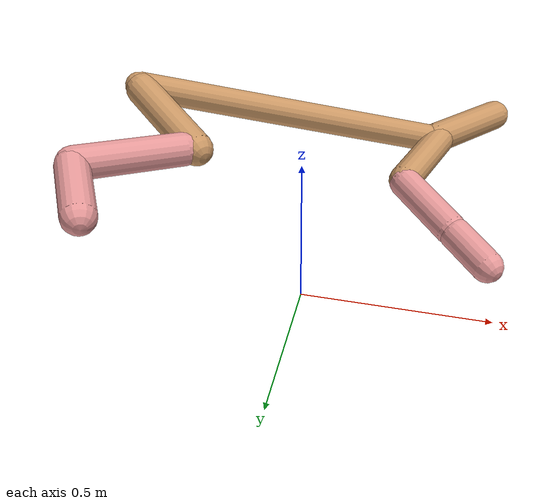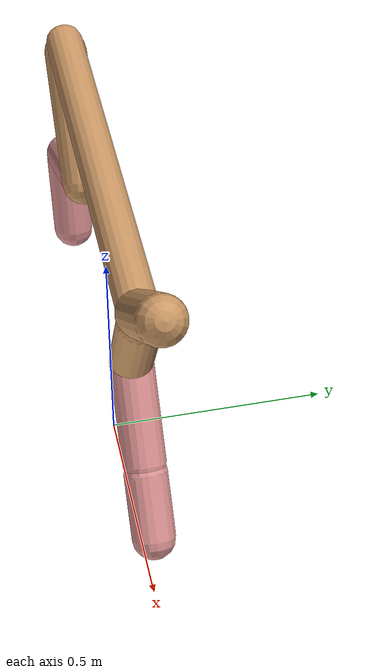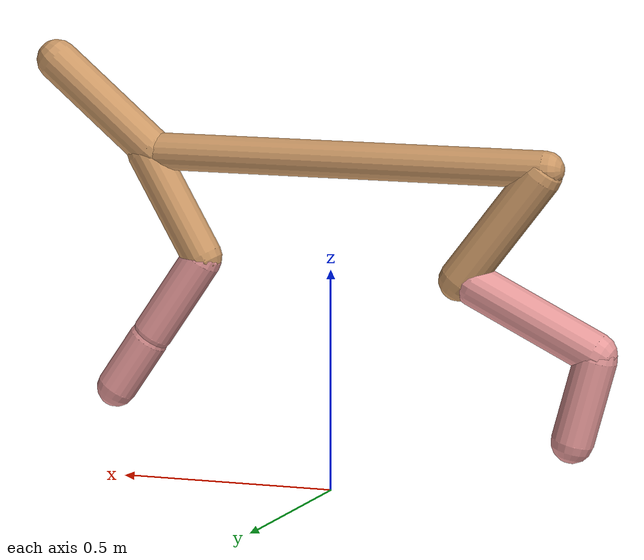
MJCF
<mujoco model="cheetah">
  <compiler angle="radian" coordinate="local" inertiafromgeom="true" settotalmass="14" />
  <default>
    <joint armature=".1" damping=".01" limited="true" solimplimit="0 .8 .03" solreflimit=".02 1" stiffness="8" />
    <geom conaffinity="0" condim="3" contype="1" friction="0.8 .1 .1" rgba="0.8 0.6 .4 1" solimp="0.0 0.8 0.01" solref="0.02 1" />
    <motor ctrllimited="true" ctrlrange="-1 1" />
  </default>
  <size nstack="300000" nuser_geom="1" />
  <option gravity="0 0 -9.81" timestep="0.01" />
  <worldbody>
    <body name="torso" pos="0.0 0.0 0.7494723966631384">
      <joint armature="0" axis="1 0 0" damping="0" limited="false" name="ignorex" pos="0 0 0" stiffness="0" type="slide" />
      <joint armature="0" axis="0 0 1" damping="0" limited="false" name="ignorez" pos="0 0 0" stiffness="0" type="slide" />
      <joint armature="0" axis="0 1 0" damping="0" limited="false" name="ignorey" pos="0 0 0" stiffness="0" type="hinge" />
      <geom fromto="-0.5 0.0 0.0 0.44422569185533944 0.0 0.0" name="torso" size="0.04221699424709058" type="capsule" />
      <geom axisangle="0 1 0 .87" name="head" pos="0.5442256918553394 0.0 0.1" size="0.04732727230306333 0.15" type="capsule" />

      <body name="bthigh" pos="-.5 0 0">
        <joint axis="0 1 0" damping="6" name="bthigh" pos="0 0 0" range="-.52 1.05" stiffness="240" type="hinge" />
        <geom axisangle="0 1 0 -3.8" name="bthigh" pos="0.10370657510892228 0.0 -0.13481854764159895" size="0.04832086661468594 0.15107923518318225" type="capsule" />
        <body name="bshin" pos="0.16741315021784456 0.0 -0.2596370952831979">
          <joint axis="0 1 0" damping="4.5" name="bshin" pos="0 0 0" range="-.785 .785" stiffness="180" type="hinge" />
          <geom axisangle="0 1 0 -2.03" name="bshin" pos="-0.14562493094653955 0.0 -0.07281246547326978" rgba="0.9 0.6 0.6 1" size="0.04832086661468594 0.15628886398260236" type="capsule" />
          <body name="bfoot" pos="-0.2912498618930791 0.0 -0.14562493094653955">
            <joint axis="0 1 0" damping="3" name="bfoot" pos="0 0 0" range="-.4 .785" stiffness="120" type="hinge" />
            <geom axisangle="0 1 0 -.27" name="bfoot" pos="0.03116445250968536 0.0 -0.10076506311464933" rgba="0.9 0.6 0.6 1" size="0.04832086661468594 0.09794102142909748" type="capsule" />
            <inertial mass="10" />
          </body>
        </body>
      </body>
      <body name="fthigh" pos="0.44422569185533944 0.0 0.0">
        <joint axis="0 1 0" damping="4.5" name="fthigh" pos="0 0 0" range="-1.5 0.8" stiffness="180" type="hinge" />
        <geom axisangle="0 1 0 .52" name="fthigh" pos="-0.06965929000953357 0.0 -0.11941592573062897" size="0.04586015167334234 0.13232381507725702" type="capsule" />
        <body name="fshin" pos="-0.13931858001906713 0.0 -0.23883185146125793">
          <joint axis="0 1 0" damping="3" name="fshin" pos="0 0 0" range="-1.2 1.1" stiffness="120" type="hinge" />
          <geom axisangle="0 1 0 -.6" name="fshin" pos="0.06468447076841122 0.0 -0.0895631133716463" rgba="0.9 0.6 0.6 1" size="0.04586015167334234 0.105461085700671" type="capsule" />
          <body name="ffoot" pos="0.12936894153682243 0.0 -0.1791262267432926">
            <joint axis="0 1 0" damping="1.5" name="ffoot" pos="0 0 0" range="-3.1 -0.3" stiffness="60" type="hinge" />
            <geom axisangle="0 1 0 -.6" name="ffoot" pos="0.04480755151047105 0.0 -0.06970063568295498" rgba="0.9 0.6 0.6 1" size="0.04586015167334234 0.06964411319855633" type="capsule" />
            <inertial mass="10" />
          </body>
        </body>
      </body>
    </body>
  </worldbody>
  <actuator>
    <motor gear="120" joint="bthigh" name="bthigh" />
    <motor gear="90" joint="bshin" name="bshin" />
    <motor gear="60" joint="bfoot" name="bfoot" />
    <motor gear="120" joint="fthigh" name="fthigh" />
    <motor gear="60" joint="fshin" name="fshin" />
    <motor gear="30" joint="ffoot" name="ffoot" />
  </actuator>
</mujoco>
